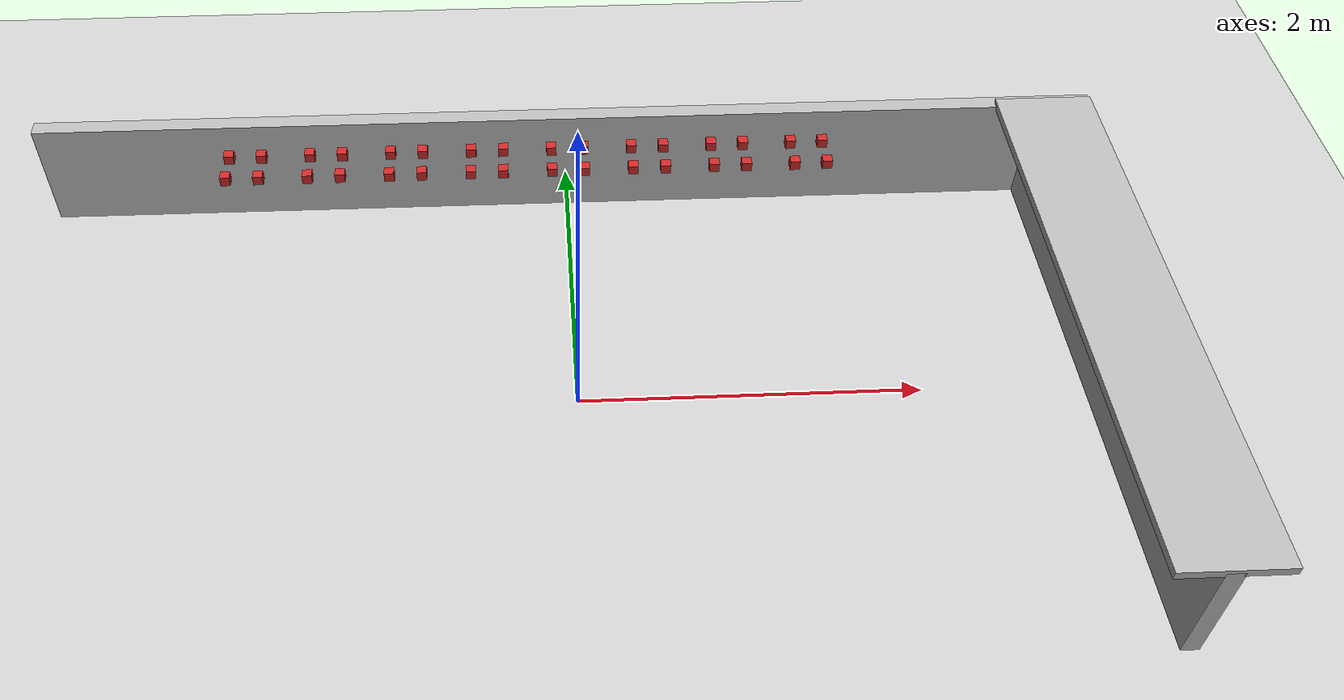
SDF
<sdf version="1.4">
 <world name="aisle">
  <include><uri>model://sun</uri></include>
  <include><uri>model://ground_plane</uri></include>
  <include><name>cube1-1</name><pose>-2.1 1.6 0.55 0 0 0</pose><uri>model://my_cube</uri></include>
  <include><name>cube1-2</name><pose>-1.9 1.6 0.55 0 0 0</pose><uri>model://my_cube</uri></include>
  <include><name>cube1-3</name><pose>-2.1 1.4 0.55 0 0 0</pose><uri>model://my_cube</uri></include>
  <include><name>cube1-4</name><pose>-1.9 1.4 0.55 0 0 0</pose><uri>model://my_cube</uri></include>
  <include><name>cube2-1</name><pose>-1.6 1.6 0.55 0 0 0</pose><uri>model://my_cube</uri></include>
  <include><name>cube2-2</name><pose>-1.4 1.6 0.55 0 0 0</pose><uri>model://my_cube</uri></include>
  <include><name>cube2-3</name><pose>-1.6 1.4 0.55 0 0 0</pose><uri>model://my_cube</uri></include>
  <include><name>cube2-4</name><pose>-1.4 1.4 0.55 0 0 0</pose><uri>model://my_cube</uri></include>
  <include><name>cube3-1</name><pose>-1.1 1.6 0.55 0 0 0</pose><uri>model://my_cube</uri></include>
  <include><name>cube2-2</name><pose>-0.9 1.6 0.55 0 0 0</pose><uri>model://my_cube</uri></include>
  <include><name>cube2-3</name><pose>-1.1 1.4 0.55 0 0 0</pose><uri>model://my_cube</uri></include>
  <include><name>cube2-4</name><pose>-0.9 1.4 0.55 0 0 0</pose><uri>model://my_cube</uri></include>
  <include><name>cube4-1</name><pose>-0.6 1.6 0.55 0 0 0</pose><uri>model://my_cube</uri></include>
  <include><name>cube4-2</name><pose>-0.4 1.6 0.55 0 0 0</pose><uri>model://my_cube</uri></include>
  <include><name>cube4-3</name><pose>-0.6 1.4 0.55 0 0 0</pose><uri>model://my_cube</uri></include>
  <include><name>cube4-4</name><pose>-0.4 1.4 0.55 0 0 0</pose><uri>model://my_cube</uri></include>
  <include><name>cube5-1</name><pose>-0.1 1.6 0.55 0 0 0</pose><uri>model://my_cube</uri></include>
  <include><name>cube5-2</name><pose>0.1 1.6 0.55 0 0 0</pose><uri>model://my_cube</uri></include>
  <include><name>cube5-3</name><pose>-0.1 1.4 0.55 0 0 0</pose><uri>model://my_cube</uri></include>
  <include><name>cube5-4</name><pose>0.1 1.4 0.55 0 0 0</pose><uri>model://my_cube</uri></include>
  <include><name>cube6-1</name><pose>0.4 1.6 0.55 0 0 0</pose><uri>model://my_cube</uri></include>
  <include><name>cube6-2</name><pose>0.6 1.6 0.55 0 0 0</pose><uri>model://my_cube</uri></include>
  <include><name>cube6-3</name><pose>0.4 1.4 0.55 0 0 0</pose><uri>model://my_cube</uri></include>
  <include><name>cube6-4</name><pose>0.6 1.4 0.55 0 0 0</pose><uri>model://my_cube</uri></include>
  <include><name>cube7-1</name><pose>0.9 1.6 0.55 0 0 0</pose><uri>model://my_cube</uri></include>
  <include><name>cube7-2</name><pose>1.1 1.6 0.55 0 0 0</pose><uri>model://my_cube</uri></include>
  <include><name>cube7-3</name><pose>0.9 1.4 0.55 0 0 0</pose><uri>model://my_cube</uri></include>
  <include><name>cube7-4</name><pose>1.1 1.4 0.55 0 0 0</pose><uri>model://my_cube</uri></include>
  <include><name>cube8-1</name><pose>1.4 1.6 0.55 0 0 0</pose><uri>model://my_cube</uri></include>
  <include><name>cube8-2</name><pose>1.4 1.4 0.55 0 0 0</pose><uri>model://my_cube</uri></include>
  <include><name>cube8-3</name><pose>1.6 1.6 0.55 0 0 0</pose><uri>model://my_cube</uri></include>
  <include><name>cube8-4</name><pose>1.6 1.4 0.55 0 0 0</pose><uri>model://my_cube</uri></include>
  <model name="wall_0">
   <static>true</static>
   <pose>0.0 1.75 0.35 0 0 0</pose>
   <link name="link">
    <collision name="visual"><geometry><box><size>6.6 0.1 0.7</size></box></geometry></collision>
    <visual name="visual"><geometry><box><size>6.6 0.1 0.7</size></box></geometry></visual>
   </link>
  </model>
  <model name="wall_1">
   <static>true</static>
   <pose>3 0.0 0.35 0 0 0</pose>
   <link name="link">
    <collision name="visual"><geometry><box><size>0.1 3.5 0.7</size></box></geometry></collision>
    <visual name="visual"><geometry><box><size>0.1 3.5 0.7</size></box></geometry></visual>
   </link>
  </model>
  <model name="counter_top">
   <static>true</static>
   <pose>3 0 0.7 0 0 0</pose>
   <link name="link">
    <collision name="collision"><geometry><box><size>0.6 3.5 0.05</size></box></geometry></collision>
    <visual name="visual"><geometry><box><size>0.6 3.5 0.05</size></box></geometry></visual>
   </link>
  </model>
 </world>
</sdf>

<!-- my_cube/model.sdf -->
<sdf version='1.4'>
  <model name="my_cube">
      <static>0</static>
      <link name='link'>
        <inertial>
          <mass>0.25</mass>
          <inertia>
            <ixx>0.001</ixx>
            <ixy>0.000000</ixy>
            <ixz>0.000000</ixz>
            <iyy>0.001</iyy>
            <iyz>0.000000</iyz>
            <izz>0.001</izz>
          </inertia>
        </inertial>
        <collision name='collision'>
          <geometry>
            <box>
              <size>0.060 0.060 0.060</size>
            </box>
          </geometry>
          <surface>
            <friction>
              <ode>
                <mu>30.0</mu>
                <mu2>30.0</mu2>
              </ode>
            </friction>
            <contact>
              <ode>
                <kp>1000000.0</kp>
                <kd>100.0</kd>
                <max_vel>1.0</max_vel>
                <min_depth>0.002</min_depth>
              </ode>
            </contact>
          </surface>
        </collision>
        <visual name='visual'>
          <geometry>
            <box>
              <size>0.060 0.060 0.060</size>
            </box>
          </geometry>
          <material>
            <script>
              <uri>file://media/materials/scripts/gazebo.material</uri>
              <name>Gazebo/Red</name>
            </script>
          </material>
        </visual>
        <velocity_decay>
          <linear>0.000000</linear>
          <angular>0.000000</angular>
        </velocity_decay>
        <self_collide>0</self_collide>
        <kinematic>0</kinematic>
        <gravity>1</gravity>
      </link>
  </model>
</sdf>
